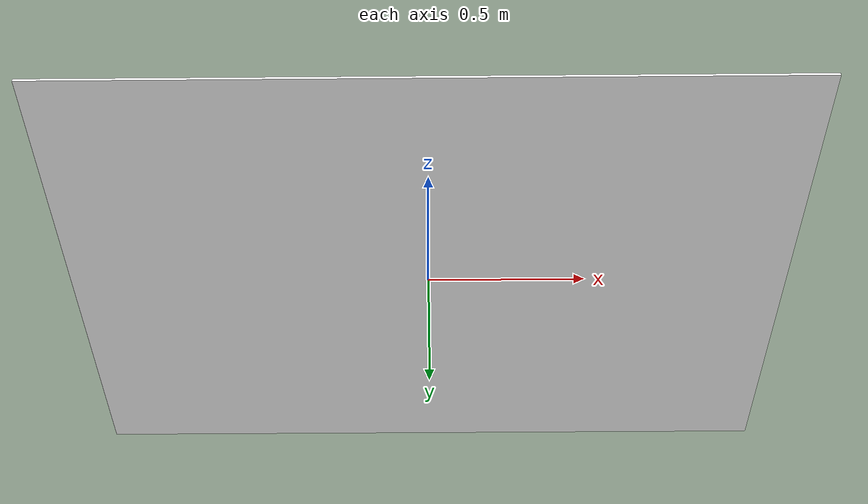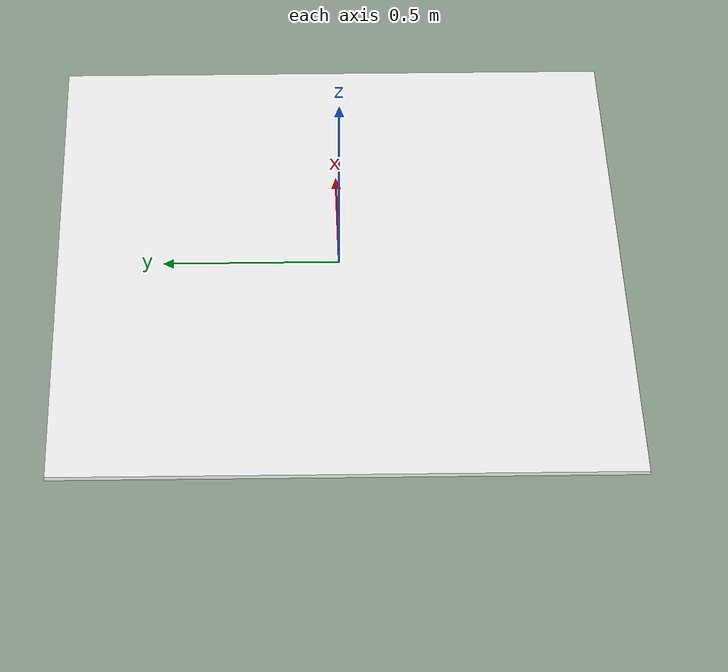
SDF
<?xml version="1.0"?>
<sdf version="1.9">
  <model name="rug">
    <static>true</static>
    <link name="body">

      <visual name="rug_base">
        <pose>0 0 0.005 0 0 0</pose>
        <geometry><box><size>2.30 1.60 0.01</size></box></geometry>
        <material>
          <ambient>1 1 1 1</ambient>
          <diffuse>1 1 1 1</diffuse>
          <specular>0.01 0.01 0.01 1</specular>
          <pbr>
            <metal>
              <albedo_map>materials/textures/carpet_albedo.jpg</albedo_map>
              <normal_map>materials/textures/carpet_normal.jpg</normal_map>
              <roughness_map>materials/textures/carpet_roughness.jpg</roughness_map>
              <metalness>0.0</metalness>
            </metal>
          </pbr>
        </material>
      </visual>
    </link>
  </model>
</sdf>
